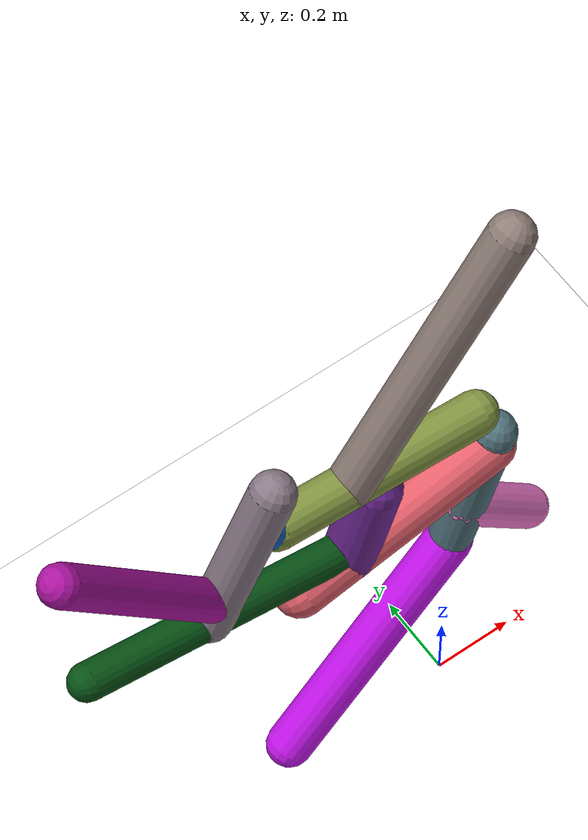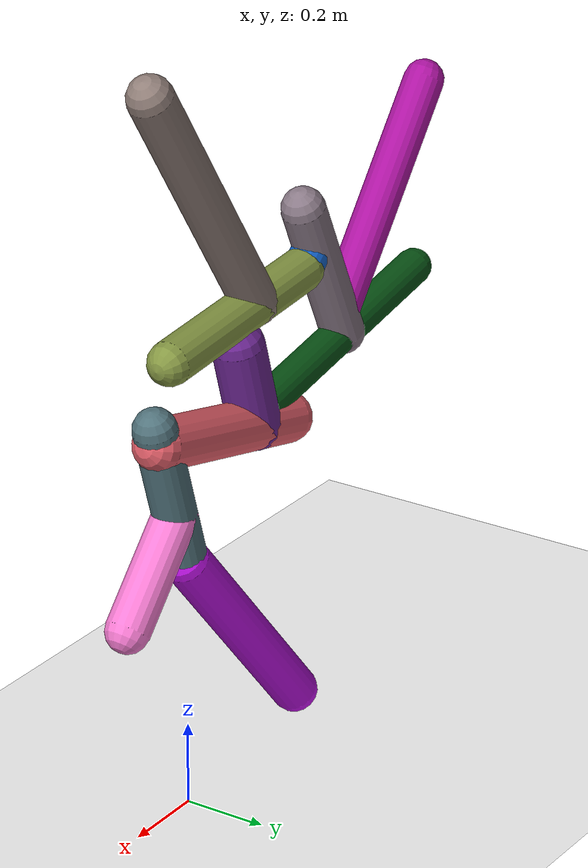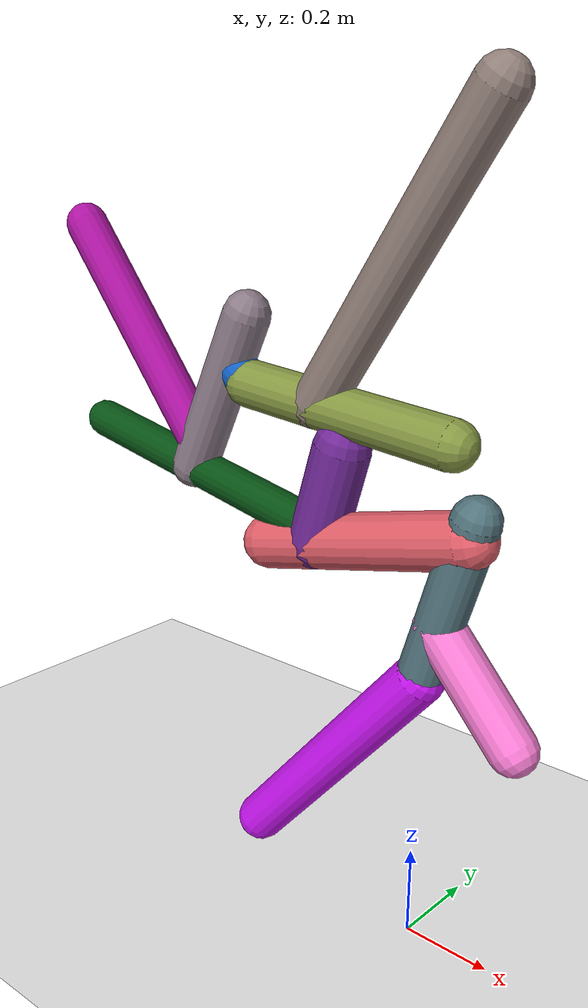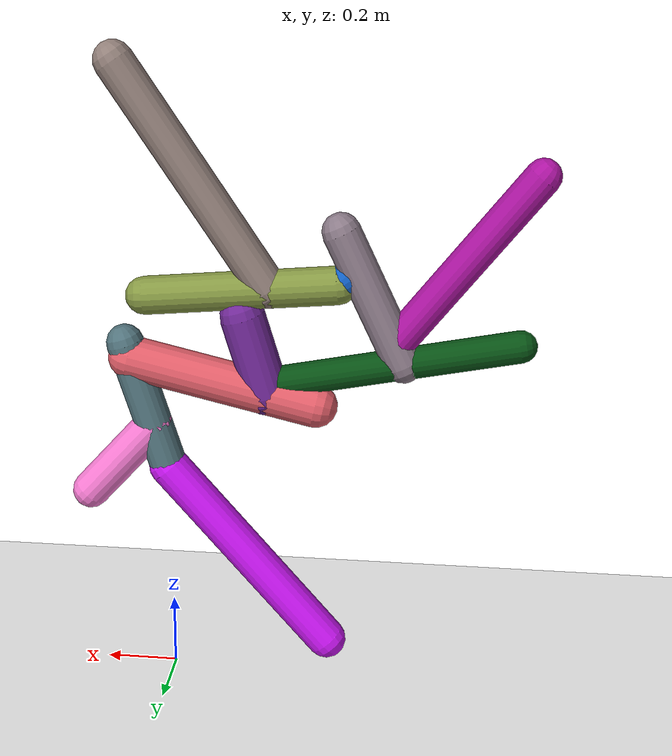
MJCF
<mujoco model="morphology">
  <option timestep="0.01"/>
  <default>
    <default class="/"/>
    <default class="0/"/>
    <default class="0/1/"/>
    <default class="0/2/"/>
    <default class="0/3/"/>
    <default class="0/3/4/"/>
    <default class="0/3/4/5/"/>
    <default class="0/3/4/5/6/"/>
    <default class="0/3/4/5/6/7/"/>
    <default class="0/3/4/5/6/8/"/>
    <default class="0/3/4/5/6/8/9/"/>
    <default class="0/3/4/5/6/8/9/10/"/>
  </default>
  <asset>
    <texture name="texplane" type="2d" builtin="checker" rgb1="0.10000000000000001 0.20000000000000001 0.29999999999999999" rgb2="0.20000000000000001 0.29999999999999999 0.40000000000000002" width="300" height="300"/>
    <material name="MatPlane" class="/" texture="texplane" texrepeat="20 20" specular="1" shininess="1" reflectance="0.5"/>
  </asset>
  <worldbody>
    <light name="//unnamed_light_0" class="/" directional="true" pos="0 0 1.5" dir="0 0 -1.3" cutoff="100" exponent="1" diffuse="1 1 1" specular="0.10000000000000001 0.10000000000000001 0.10000000000000001"/>
    <geom name="ground" class="/" type="plane" size="15 15 0.5" material="MatPlane" rgba="1 1 1 1"/>
    <site name="body" class="/" size="9.9999999999999995e-07 9.9999999999999995e-07 9.9999999999999995e-07" pos="0 0 0.60520426034927366"/>
    <body pos="0 0 0.60520426034927366" name="0/">
      <joint name="0/rootx/" class="/" type="slide" axis="1 0 0" limited="false" stiffness="0" armature="0" damping="0"/>
      <joint name="0/rootz/" class="/" type="slide" axis="0 0 1" limited="false" stiffness="0" armature="0" damping="0"/>
      <joint name="0/rooty/" class="/" type="hinge" axis="0 1 0" limited="false" stiffness="0" armature="0" damping="0"/>
      <geom name="0/geom" class="0/" type="capsule" contype="1" conaffinity="1" condim="3" size="0.051469874370058434" rgba="0.31573441394095814 0.44623338721238859 0.48149225408367946 1" friction="0.59999999999999998 0.10000000000000001 0.10000000000000001" fromto="0 0 0 0.11371025165130888 0 0.367483235594809"/>
      <site name="0/end0" class="0/" size="0.0050000000000000001" pos="0.11371025165130888 0 0.367483235594809"/>
      <site name="0/attach1" class="0/" size="9.9999999999999995e-07 9.9999999999999995e-07 9.9999999999999995e-07" pos="0.0030039524935347962 0 0.0097080269005328061"/>
      <body pos="0.0030039524935347962 0 0.0097080269005328061" name="0/1/">
        <joint name="0/1/joint/" class="0/" type="hinge" axis="0 1 0" limited="true" range="-54.22970801939671 54.22970801939671"/>
        <geom name="0/1/geom" class="0/1/" type="capsule" contype="1" conaffinity="1" condim="3" size="0.055467573657599585" rgba="0.7961053220661195 0.08164899660487035 0.95552696913474355 1" friction="0.59999999999999998 0.10000000000000001 0.10000000000000001" fromto="0 0 0 -0.44152158172176104 0 -0.51491228383684695"/>
        <site name="0/1/end1" class="0/1/" size="0.0050000000000000001" pos="-0.44152158172176104 0 -0.51491228383684695"/>
      </body>
      <site name="0/attach2" class="0/" size="9.9999999999999995e-07 9.9999999999999995e-07 9.9999999999999995e-07" pos="0.041010319874519544 0 0.13253514807513023"/>
      <body pos="0.041010319874519544 0 0.13253514807513023" name="0/2/">
        <geom name="0/2/geom" class="0/2/" type="capsule" contype="1" conaffinity="1" condim="3" size="0.052113359285992061" rgba="0.95563489286875325 0.48023511422745502 0.81553361300208993 1" friction="0.59999999999999998 0.10000000000000001 0.10000000000000001" fromto="0 0 0 0.18621908287825073 0 -0.20580965945983398"/>
        <site name="0/2/end2" class="0/2/" size="0.0050000000000000001" pos="0.18621908287825073 0 -0.20580965945983398"/>
      </body>
      <site name="0/attach3" class="0/" size="9.9999999999999995e-07 9.9999999999999995e-07 9.9999999999999995e-07" pos="0.10088214042147449 0 0.32602597248219689"/>
      <body pos="0.10088214042147449 0 0.32602597248219689" name="0/3/">
        <joint name="0/3/joint/" class="0/" type="hinge" axis="0 1 0" limited="true" range="-40.041625041336559 40.041625041336559"/>
        <geom name="0/3/geom" class="0/3/" type="capsule" contype="1" conaffinity="1" condim="3" size="0.060152345449692668" rgba="0.87684140359901597 0.36677555324969602 0.40990418639296267 1" friction="0.59999999999999998 0.10000000000000001 0.10000000000000001" fromto="0 0 0 -0.507278151298034 0 -0.11804976776361686"/>
        <site name="0/3/end3" class="0/3/" size="0.0050000000000000001" pos="-0.507278151298034 0 -0.11804976776361686"/>
        <site name="0/3/attach4" class="0/3/" size="9.9999999999999995e-07 9.9999999999999995e-07 9.9999999999999995e-07" pos="-0.37485285587347827 0 -0.087232798156517313"/>
        <body pos="-0.37485285587347827 0 -0.087232798156517313" name="0/3/4/">
          <joint name="0/3/4/joint/" class="0/3/" type="hinge" axis="0 1 0" limited="true" range="-53.733317308727464 53.733317308727464"/>
          <geom name="0/3/4/geom" class="0/3/4/" type="capsule" contype="1" conaffinity="1" condim="3" size="0.061575193009101525" rgba="0.43155889964402827 0.15593094568096744 0.58263324546758422 1" friction="0.59999999999999998 0.10000000000000001 0.10000000000000001" fromto="0 0 0 0.06497235521296707 0 0.21623104380138725"/>
          <site name="0/3/4/end4" class="0/3/4/" size="0.0050000000000000001" pos="0.06497235521296707 0 0.21623104380138725"/>
          <site name="0/3/4/attach5" class="0/3/4/" size="9.9999999999999995e-07 9.9999999999999995e-07 9.9999999999999995e-07" pos="0.0076270537485014552 0 0.025383192401783324"/>
          <body pos="0.0076270537485014552 0 0.025383192401783324" name="0/3/4/5/">
            <joint name="0/3/4/5/joint/" class="0/3/4/" type="hinge" axis="0 1 0" limited="true" range="-69.274659721424328 69.274659721424328"/>
            <geom name="0/3/4/5/geom" class="0/3/4/5/" type="capsule" contype="1" conaffinity="1" condim="3" size="0.043582279948402858" rgba="0.026200261206214437 0.31272225825787736 0.076098729815238242 1" friction="0.59999999999999998 0.10000000000000001 0.10000000000000001" fromto="0 0 0 -0.68330526275067571 0 0.13489047533111709"/>
            <site name="0/3/4/5/end5" class="0/3/4/5/" size="0.0050000000000000001" pos="-0.68330526275067571 0 0.13489047533111709"/>
            <site name="0/3/4/5/attach6" class="0/3/4/5/" size="9.9999999999999995e-07 9.9999999999999995e-07 9.9999999999999995e-07" pos="-0.37460638962711862 0 0.073950599700434855"/>
            <body pos="-0.37460638962711862 0 0.073950599700434855" name="0/3/4/5/6/">
              <joint name="0/3/4/5/6/joint/" class="0/3/4/5/" type="hinge" axis="0 1 0" limited="true" range="-47.157253323884483 47.157253323884483"/>
              <geom name="0/3/4/5/6/geom" class="0/3/4/5/6/" type="capsule" contype="1" conaffinity="1" condim="3" size="0.052159742757544938" rgba="0.53661607099392195 0.47335299014212395 0.52516685452125977 1" friction="0.59999999999999998 0.10000000000000001 0.10000000000000001" fromto="0 0 0 0.16831003085905016 0 0.35720207748745691"/>
              <site name="0/3/4/5/6/end6" class="0/3/4/5/6/" size="0.0050000000000000001" pos="0.16831003085905016 0 0.35720207748745691"/>
              <site name="0/3/4/5/6/attach7" class="0/3/4/5/6/" size="9.9999999999999995e-07 9.9999999999999995e-07 9.9999999999999995e-07" pos="0.024237066300902353 0 0.051437994459960203"/>
              <body pos="0.024237066300902353 0 0.051437994459960203" name="0/3/4/5/6/7/">
                <joint name="0/3/4/5/6/7/joint/" class="0/3/4/5/6/" type="hinge" axis="0 1 0" limited="true" range="-69.529229453612274 69.529229453612274"/>
                <geom name="0/3/4/5/6/7/geom" class="0/3/4/5/6/7/" type="capsule" contype="1" conaffinity="1" condim="3" size="0.047974076596286115" rgba="0.66778601253470893 0.073463751362692786 0.62532845377035784 1" friction="0.59999999999999998 0.10000000000000001 0.10000000000000001" fromto="0 0 0 -0.36778672535505635 0 0.46621669387712528"/>
                <site name="0/3/4/5/6/7/end7" class="0/3/4/5/6/7/" size="0.0050000000000000001" pos="-0.36778672535505635 0 0.46621669387712528"/>
              </body>
              <site name="0/3/4/5/6/attach8" class="0/3/4/5/6/" size="9.9999999999999995e-07 9.9999999999999995e-07 9.9999999999999995e-07" pos="0.11967326173308987 0 0.25398092729576199"/>
              <body pos="0.11967326173308987 0 0.25398092729576199" name="0/3/4/5/6/8/">
                <joint name="0/3/4/5/6/8/joint/" class="0/3/4/5/6/" type="hinge" axis="0 1 0" limited="true" range="-32.65575122111985 32.65575122111985"/>
                <geom name="0/3/4/5/6/8/geom" class="0/3/4/5/6/8/" type="capsule" contype="1" conaffinity="1" condim="3" size="0.045954598009853097" rgba="0.067428456476634091 0.3766082760099897 0.77048109441680401 1" friction="0.59999999999999998 0.10000000000000001 0.10000000000000001" fromto="0 0 0 0.057215394694356325 0 -0.043542249874345851"/>
                <site name="0/3/4/5/6/8/end8" class="0/3/4/5/6/8/" size="0.0050000000000000001" pos="0.057215394694356325 0 -0.043542249874345851"/>
                <site name="0/3/4/5/6/8/attach9" class="0/3/4/5/6/8/" size="9.9999999999999995e-07 9.9999999999999995e-07 9.9999999999999995e-07" pos="0.054929373119389828 0 -0.041802534135827046"/>
                <body pos="0.054929373119389828 0 -0.041802534135827046" name="0/3/4/5/6/8/9/">
                  <joint name="0/3/4/5/6/8/9/joint/" class="0/3/4/5/6/8/" type="hinge" axis="0 1 0" limited="true" range="-42.127132656522051 42.127132656522051"/>
                  <geom name="0/3/4/5/6/8/9/geom" class="0/3/4/5/6/8/9/" type="capsule" contype="1" conaffinity="1" condim="3" size="0.051817904302865786" rgba="0.51785013276089065 0.58825055278388316 0.26080546474887056 1" friction="0.59999999999999998 0.10000000000000001 0.10000000000000001" fromto="0 0 0 0.52109469936700448 0 -0.046588116420590686"/>
                  <site name="0/3/4/5/6/8/9/end9" class="0/3/4/5/6/8/9/" size="0.0050000000000000001" pos="0.52109469936700448 0 -0.046588116420590686"/>
                  <site name="0/3/4/5/6/8/9/attach10" class="0/3/4/5/6/8/9/" size="9.9999999999999995e-07 9.9999999999999995e-07 9.9999999999999995e-07" pos="0.18776987568284123 0 -0.016787437752136838"/>
                  <body pos="0.18776987568284123 0 -0.016787437752136838" name="0/3/4/5/6/8/9/10/">
                    <geom name="0/3/4/5/6/8/9/10/geom" class="0/3/4/5/6/8/9/10/" type="capsule" contype="1" conaffinity="1" condim="3" size="0.053377616129925462" rgba="0.55858023924645117 0.49004848434457504 0.46580108921285579 1" friction="0.59999999999999998 0.10000000000000001 0.10000000000000001" fromto="0 0 0 0.39296662057310039 0 0.59345829898025371"/>
                    <site name="0/3/4/5/6/8/9/10/end10" class="0/3/4/5/6/8/9/10/" size="0.0050000000000000001" pos="0.39296662057310039 0 0.59345829898025371"/>
                  </body>
                </body>
              </body>
            </body>
          </body>
        </body>
      </body>
      <camera name="0/side" class="0/" mode="trackcom" pos="0.40000000000000002 -4 0.20000000000000001" quat="0.70699999999999996 0.70699999999999996 0 0"/>
    </body>
  </worldbody>
  <actuator>
    <motor name="0/1/motor" class="0/1/" ctrllimited="true" ctrlrange="-1 1" gear="88" joint="0/1/joint/"/>
    <motor name="0/3/motor" class="0/3/" ctrllimited="true" ctrlrange="-1 1" gear="66" joint="0/3/joint/"/>
    <motor name="0/3/4/motor" class="0/3/4/" ctrllimited="true" ctrlrange="-1 1" gear="68" joint="0/3/4/joint/"/>
    <motor name="0/3/4/5/motor" class="0/3/4/5/" ctrllimited="true" ctrlrange="-1 1" gear="75" joint="0/3/4/5/joint/"/>
    <motor name="0/3/4/5/6/motor" class="0/3/4/5/6/" ctrllimited="true" ctrlrange="-1 1" gear="68" joint="0/3/4/5/6/joint/"/>
    <motor name="0/3/4/5/6/7/motor" class="0/3/4/5/6/7/" ctrllimited="true" ctrlrange="-1 1" gear="59" joint="0/3/4/5/6/7/joint/"/>
    <motor name="0/3/4/5/6/8/motor" class="0/3/4/5/6/8/" ctrllimited="true" ctrlrange="-1 1" gear="83" joint="0/3/4/5/6/8/joint/"/>
    <motor name="0/3/4/5/6/8/9/motor" class="0/3/4/5/6/8/9/" ctrllimited="true" ctrlrange="-1 1" gear="69" joint="0/3/4/5/6/8/9/joint/"/>
  </actuator>
  <sensor>
    <subtreelinvel name="velocity" body="0/"/>
  </sensor>
</mujoco>
